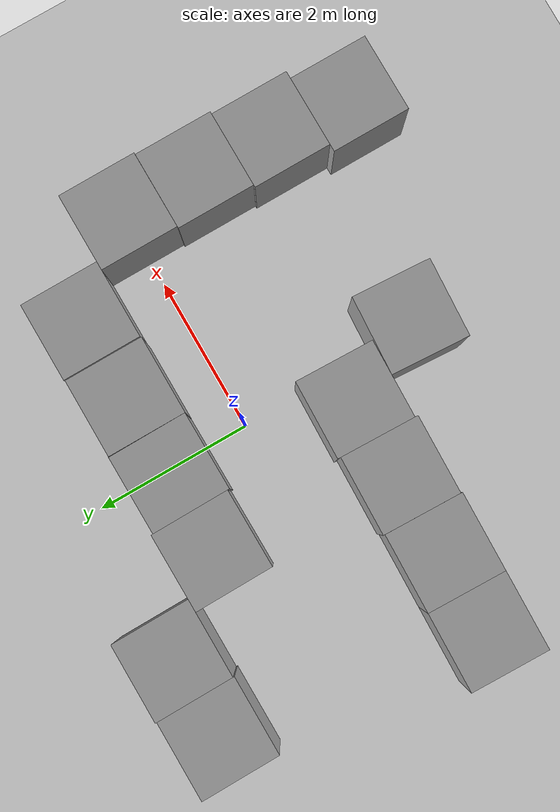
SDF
<sdf version="1.6">
 <world name="default">
  <light name="sun" type="directional">
   <pose>0 0 10 0 -0 0</pose>
   <diffuse>0.8 0.8 0.8 1</diffuse>
   <specular>0.2 0.2 0.2 1</specular>
   <attenuation>
    <range>1000</range>
    <constant>0.9</constant>
    <linear>0.01</linear>
    <quadratic>0.001</quadratic>
   </attenuation>
   <direction>-0.5 0.1 -0.9</direction>
  </light>
  <model name="ground_plane">
   <static>1</static>
   <link name="link">
    <collision name="collision">
     <geometry><plane><normal>0 0 1</normal><size>100 100</size></plane></geometry>
     <surface>
      <contact><collide_bitmask>65535</collide_bitmask></contact>
      <friction><ode><mu>100</mu><mu2>50</mu2></ode></friction>
     </surface>
    </collision>
    <visual name="visual">
     <cast_shadows>0</cast_shadows>
     <geometry><plane><normal>0 0 1</normal><size>100 100</size></plane></geometry>
     <material>
      <script><uri>file://media/materials/scripts/gazebo.material</uri><name>Gazebo/Grey</name></script>
     </material>
    </visual>
   </link>
  </model>
  <gravity>0 0 -9.8</gravity>
  <magnetic_field>6e-06 2.3e-05 -4.2e-05</magnetic_field>
  <atmosphere type="adiabatic"/>
  <physics name="default_physics" default="0" type="ode">
   <max_step_size>0.001</max_step_size>
   <real_time_factor>1</real_time_factor>
   <real_time_update_rate>1000</real_time_update_rate>
  </physics>
  <scene><ambient>0.4 0.4 0.4 1</ambient><background>0.7 0.7 0.7 1</background><shadows>1</shadows></scene>
  <audio><device>default</device></audio>
  <spherical_coordinates>
   <surface_model>EARTH_WGS84</surface_model>
   <latitude_deg>0</latitude_deg>
   <longitude_deg>0</longitude_deg>
   <elevation>0</elevation>
   <heading_deg>0</heading_deg>
  </spherical_coordinates>
  <model name="unit_box">
   <pose>-1.10181 1.03439 0.499995 0 1e-05 0.012369</pose>
   <link name="link">
    <inertial>
     <mass>1</mass>
     <inertia>
      <ixx>0.166667</ixx>
      <ixy>0</ixy>
      <ixz>0</ixz>
      <iyy>0.166667</iyy>
      <iyz>0</iyz>
      <izz>0.166667</izz>
     </inertia>
    </inertial>
    <collision name="collision"><geometry><box><size>1 1 1</size></box></geometry></collision>
    <visual name="visual">
     <geometry><box><size>1 1 1</size></box></geometry>
     <material>
      <script><name>Gazebo/Grey</name><uri>file://media/materials/scripts/gazebo.material</uri></script>
     </material>
    </visual>
   </link>
  </model>
  <model name="unit_box_clone">
   <pose>-0.101553 1.02164 0.499995 -0 1e-05 0.012345</pose>
   <link name="link">
    <inertial>
     <mass>1</mass>
     <inertia>
      <ixx>0.166667</ixx>
      <ixy>0</ixy>
      <ixz>0</ixz>
      <iyy>0.166667</iyy>
      <iyz>0</iyz>
      <izz>0.166667</izz>
     </inertia>
    </inertial>
    <collision name="collision"><geometry><box><size>1 1 1</size></box></geometry></collision>
    <visual name="visual">
     <geometry><box><size>1 1 1</size></box></geometry>
     <material>
      <script><name>Gazebo/Grey</name><uri>file://media/materials/scripts/gazebo.material</uri></script>
     </material>
    </visual>
   </link>
  </model>
  <model name="unit_box_clone_0">
   <pose>0.901807 1.02713 0.499995 -0 -1e-05 0.005565</pose>
   <link name="link">
    <inertial>
     <mass>1</mass>
     <inertia>
      <ixx>0.166667</ixx>
      <ixy>0</ixy>
      <ixz>0</ixz>
      <iyy>0.166667</iyy>
      <iyz>0</iyz>
      <izz>0.166667</izz>
     </inertia>
    </inertial>
    <collision name="collision"><geometry><box><size>1 1 1</size></box></geometry></collision>
    <visual name="visual">
     <geometry><box><size>1 1 1</size></box></geometry>
     <material>
      <script><name>Gazebo/Grey</name><uri>file://media/materials/scripts/gazebo.material</uri></script>
     </material>
    </visual>
   </link>
  </model>
  <model name="unit_box_clone_1">
   <pose>-1.94265 2.02556 0.499995 1e-05 -0 0.009391</pose>
   <link name="link">
    <inertial>
     <mass>1</mass>
     <inertia>
      <ixx>0.166667</ixx>
      <ixy>0</ixy>
      <ixz>0</ixz>
      <iyy>0.166667</iyy>
      <iyz>0</iyz>
      <izz>0.166667</izz>
     </inertia>
    </inertial>
    <collision name="collision"><geometry><box><size>1 1 1</size></box></geometry></collision>
    <visual name="visual">
     <geometry><box><size>1 1 1</size></box></geometry>
     <material>
      <script><name>Gazebo/Grey</name><uri>file://media/materials/scripts/gazebo.material</uri></script>
     </material>
    </visual>
   </link>
  </model>
  <model name="unit_box_clone_2">
   <pose>-2.42638 -1.23266 0.499995 1e-05 -0 -0.024083</pose>
   <link name="link">
    <inertial>
     <mass>1</mass>
     <inertia>
      <ixx>0.166667</ixx>
      <ixy>0</ixy>
      <ixz>0</ixz>
      <iyy>0.166667</iyy>
      <iyz>0</iyz>
      <izz>0.166667</izz>
     </inertia>
    </inertial>
    <collision name="collision"><geometry><box><size>1 1 1</size></box></geometry></collision>
    <visual name="visual">
     <geometry><box><size>1 1 1</size></box></geometry>
     <material>
      <script><name>Gazebo/Grey</name><uri>file://media/materials/scripts/gazebo.material</uri></script>
     </material>
    </visual>
   </link>
  </model>
  <model name="unit_box_clone_3">
   <pose>-1.42611 -1.23695 0.499995 1e-05 -0 -0.024242</pose>
   <link name="link">
    <inertial>
     <mass>1</mass>
     <inertia>
      <ixx>0.166667</ixx>
      <ixy>0</ixy>
      <ixz>0</ixz>
      <iyy>0.166667</iyy>
      <iyz>0</iyz>
      <izz>0.166667</izz>
     </inertia>
    </inertial>
    <collision name="collision"><geometry><box><size>1 1 1</size></box></geometry></collision>
    <visual name="visual">
     <geometry><box><size>1 1 1</size></box></geometry>
     <material>
      <script><name>Gazebo/Grey</name><uri>file://media/materials/scripts/gazebo.material</uri></script>
     </material>
    </visual>
   </link>
  </model>
  <model name="unit_box_clone_4">
   <pose>1.91309 1.04513 0.499995 1e-05 -0 0.007683</pose>
   <link name="link">
    <inertial>
     <mass>1</mass>
     <inertia>
      <ixx>0.166667</ixx>
      <ixy>0</ixy>
      <ixz>0</ixz>
      <iyy>0.166667</iyy>
      <iyz>0</iyz>
      <izz>0.166667</izz>
     </inertia>
    </inertial>
    <collision name="collision"><geometry><box><size>1 1 1</size></box></geometry></collision>
    <visual name="visual">
     <geometry><box><size>1 1 1</size></box></geometry>
     <material>
      <script><name>Gazebo/Grey</name><uri>file://media/materials/scripts/gazebo.material</uri></script>
     </material>
    </visual>
   </link>
  </model>
  <model name="unit_box_clone_5">
   <pose>0.080304 -2.25124 0.499995 0 -1e-05 -0.056493</pose>
   <link name="link">
    <inertial>
     <mass>1</mass>
     <inertia>
      <ixx>0.166667</ixx>
      <ixy>0</ixy>
      <ixz>0</ixz>
      <iyy>0.166667</iyy>
      <iyz>0</iyz>
      <izz>0.166667</izz>
     </inertia>
    </inertial>
    <collision name="collision"><geometry><box><size>1 1 1</size></box></geometry></collision>
    <visual name="visual">
     <geometry><box><size>1 1 1</size></box></geometry>
     <material>
      <script><name>Gazebo/Grey</name><uri>file://media/materials/scripts/gazebo.material</uri></script>
     </material>
    </visual>
   </link>
  </model>
  <model name="unit_box_clone_6">
   <pose>2.80732 0.051968 0.499995 -0 1e-05 0.007727</pose>
   <link name="link">
    <inertial>
     <mass>1</mass>
     <inertia>
      <ixx>0.166667</ixx>
      <ixy>0</ixy>
      <ixz>0</ixz>
      <iyy>0.166667</iyy>
      <iyz>0</iyz>
      <izz>0.166667</izz>
     </inertia>
    </inertial>
    <collision name="collision"><geometry><box><size>1 1 1</size></box></geometry></collision>
    <visual name="visual">
     <geometry><box><size>1 1 1</size></box></geometry>
     <material>
      <script><name>Gazebo/Grey</name><uri>file://media/materials/scripts/gazebo.material</uri></script>
     </material>
    </visual>
   </link>
  </model>
  <model name="unit_box_clone_7">
   <pose>-0.425466 -1.22275 0.499995 1e-05 -0 -0.024239</pose>
   <link name="link">
    <inertial>
     <mass>1</mass>
     <inertia>
      <ixx>0.166667</ixx>
      <ixy>0</ixy>
      <ixz>0</ixz>
      <iyy>0.166667</iyy>
      <iyz>0</iyz>
      <izz>0.166667</izz>
     </inertia>
    </inertial>
    <collision name="collision"><geometry><box><size>1 1 1</size></box></geometry></collision>
    <visual name="visual">
     <geometry><box><size>1 1 1</size></box></geometry>
     <material>
      <script><name>Gazebo/Grey</name><uri>file://media/materials/scripts/gazebo.material</uri></script>
     </material>
    </visual>
   </link>
  </model>
  <model name="unit_box_0">
   <pose>-2.94252 1.9983 0.499995 1e-05 -0 0.009242</pose>
   <link name="link">
    <inertial>
     <mass>1</mass>
     <inertia>
      <ixx>0.166667</ixx>
      <ixy>0</ixy>
      <ixz>0</ixz>
      <iyy>0.166667</iyy>
      <iyz>0</iyz>
      <izz>0.166667</izz>
     </inertia>
    </inertial>
    <collision name="collision"><geometry><box><size>1 1 1</size></box></geometry></collision>
    <visual name="visual">
     <geometry><box><size>1 1 1</size></box></geometry>
     <material>
      <script><name>Gazebo/Grey</name><uri>file://media/materials/scripts/gazebo.material</uri></script>
     </material>
    </visual>
   </link>
  </model>
  <model name="unit_box_clone_2_clone">
   <pose>-3.42612 -1.20862 0.499995 0 -1e-05 -0.024072</pose>
   <link name="link">
    <inertial>
     <mass>1</mass>
     <inertia>
      <ixx>0.166667</ixx>
      <ixy>0</ixy>
      <ixz>0</ixz>
      <iyy>0.166667</iyy>
      <iyz>0</iyz>
      <izz>0.166667</izz>
     </inertia>
    </inertial>
    <collision name="collision"><geometry><box><size>1 1 1</size></box></geometry></collision>
    <visual name="visual">
     <geometry><box><size>1 1 1</size></box></geometry>
     <material>
      <script><name>Gazebo/Grey</name><uri>file://media/materials/scripts/gazebo.material</uri></script>
     </material>
    </visual>
   </link>
  </model>
  <model name="unit_box_clone_6_clone">
   <pose>2.79139 -0.948551 0.499995 1e-05 -0 0.006986</pose>
   <link name="link">
    <inertial>
     <mass>1</mass>
     <inertia>
      <ixx>0.166667</ixx>
      <ixy>0</ixy>
      <ixz>0</ixz>
      <iyy>0.166667</iyy>
      <iyz>0</iyz>
      <izz>0.166667</izz>
     </inertia>
    </inertial>
    <collision name="collision"><geometry><box><size>1 1 1</size></box></geometry></collision>
    <visual name="visual">
     <geometry><box><size>1 1 1</size></box></geometry>
     <material>
      <script><name>Gazebo/Grey</name><uri>file://media/materials/scripts/gazebo.material</uri></script>
     </material>
    </visual>
   </link>
  </model>
  <model name="unit_box_clone_6_clone_clone">
   <pose>2.76726 -1.94875 0.499995 1e-05 -0 0.006973</pose>
   <link name="link">
    <inertial>
     <mass>1</mass>
     <inertia>
      <ixx>0.166667</ixx>
      <ixy>0</ixy>
      <ixz>0</ixz>
      <iyy>0.166667</iyy>
      <iyz>0</iyz>
      <izz>0.166667</izz>
     </inertia>
    </inertial>
    <collision name="collision"><geometry><box><size>1 1 1</size></box></geometry></collision>
    <visual name="visual">
     <geometry><box><size>1 1 1</size></box></geometry>
     <material>
      <script><name>Gazebo/Grey</name><uri>file://media/materials/scripts/gazebo.material</uri></script>
     </material>
    </visual>
   </link>
  </model>
  <model name="unit_box_clone_6_clone_clone_0">
   <pose>2.67862 -2.94944 0.499995 -1e-05 -0 0.006842</pose>
   <link name="link">
    <inertial>
     <mass>1</mass>
     <inertia>
      <ixx>0.166667</ixx>
      <ixy>0</ixy>
      <ixz>0</ixz>
      <iyy>0.166667</iyy>
      <iyz>0</iyz>
      <izz>0.166667</izz>
     </inertia>
    </inertial>
    <collision name="collision"><geometry><box><size>1 1 1</size></box></geometry></collision>
    <visual name="visual">
     <geometry><box><size>1 1 1</size></box></geometry>
     <material>
      <script><name>Gazebo/Grey</name><uri>file://media/materials/scripts/gazebo.material</uri></script>
     </material>
    </visual>
   </link>
  </model>
 </world>
</sdf>
